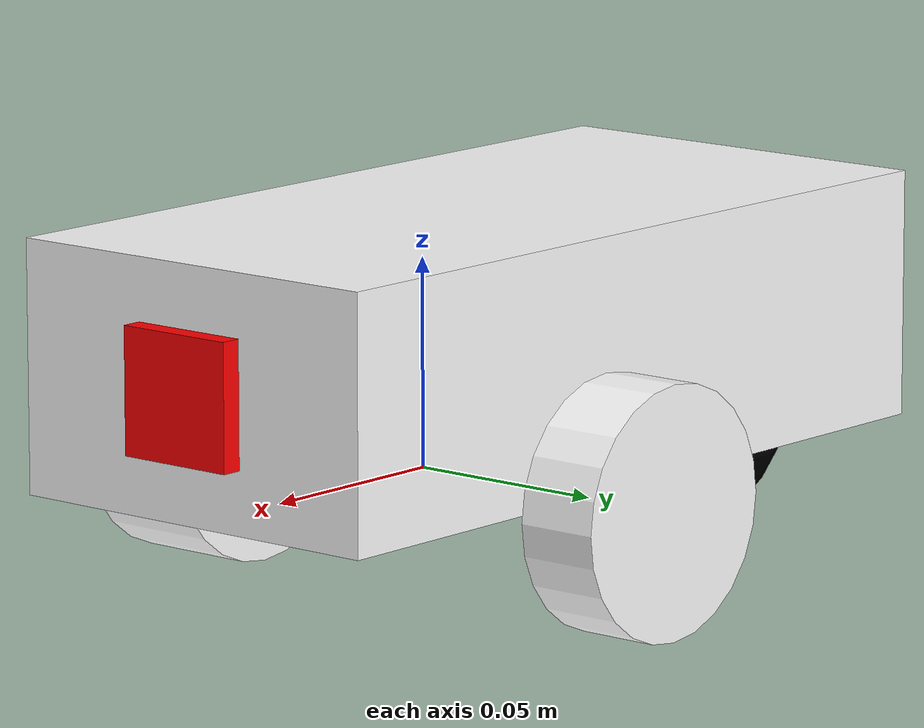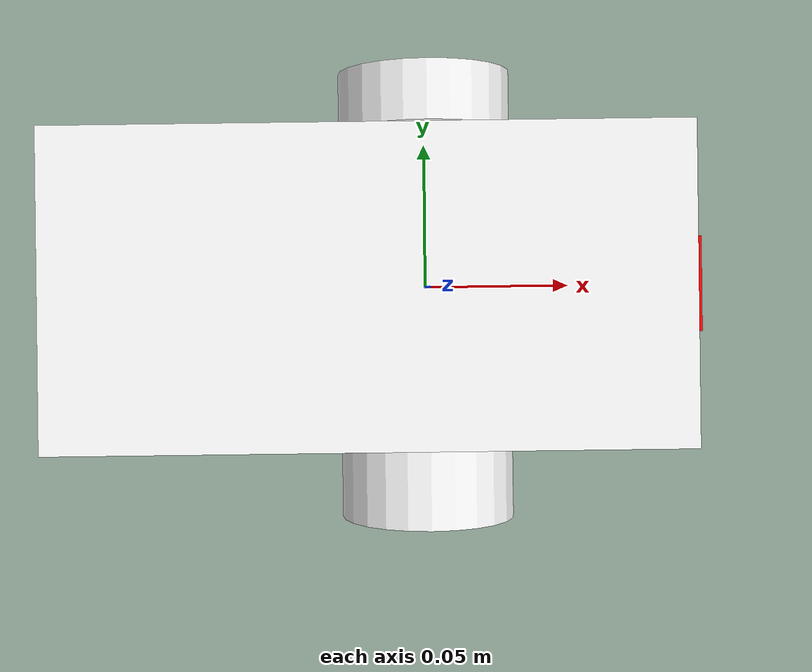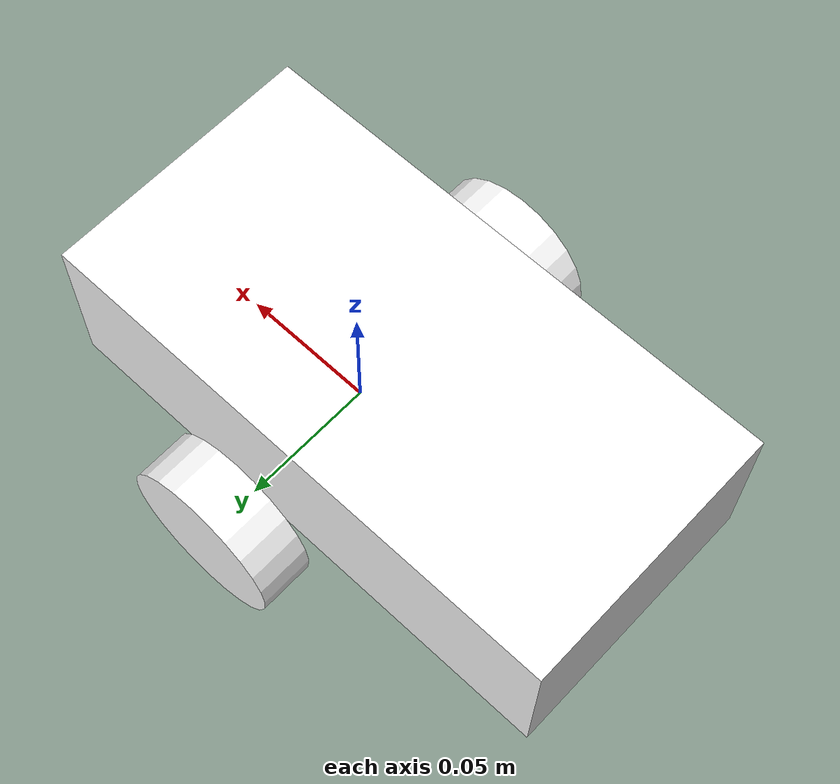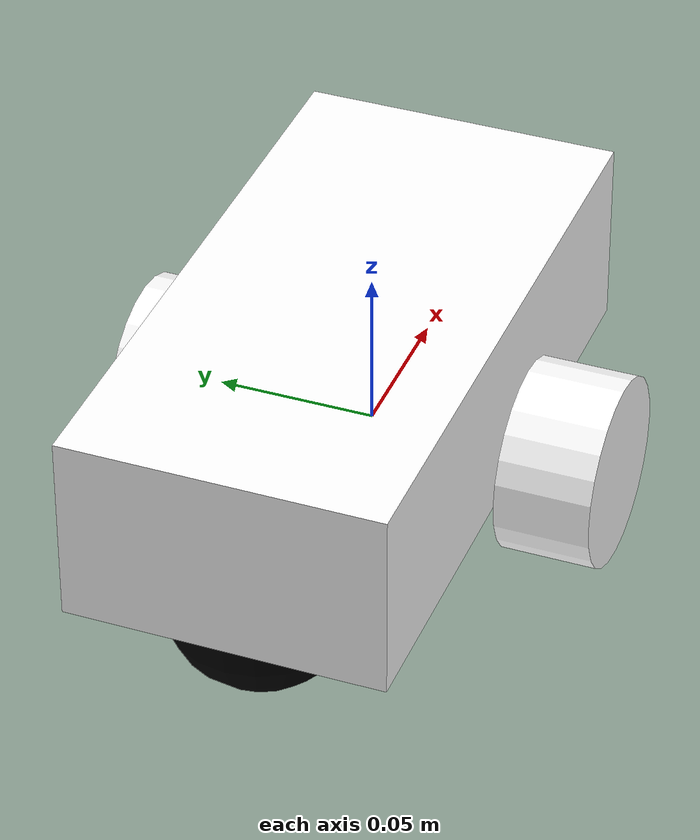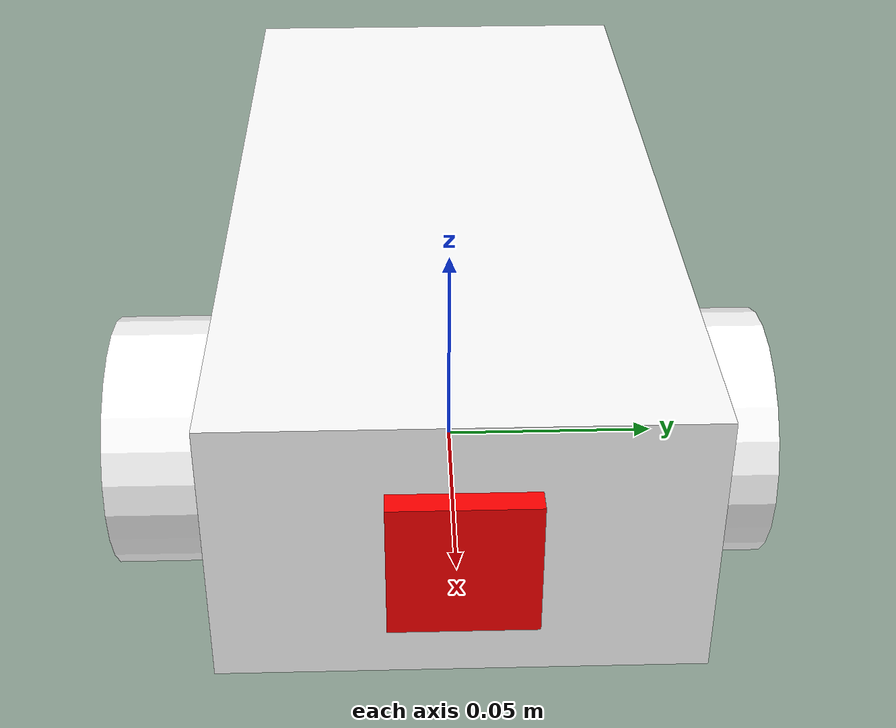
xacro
<?xml version="1.0"?>
<robot xmlns:xacro="http://www.ros.org/wiki/xacro" name="urdf_tutorial">
    <!-- MACROS -->
    <xacro:include filename="macros.xacro"/>
    <xacro:include filename="gazebo.xacro"/>

    <!-- COLOR -->
    <material name="white">
        <color rgba="1 1 1 1" />
    </material>

    <material name="blue">
        <color rgba="0 0 1 1" />
    </material>

    <material name="black">
        <color rgba="0 0 0 1" />
    </material>

    <material name="red">
        <color rgba="1 0 0 1" />
    </material>

    <!-- BASE LINK -->
    <link name="base_link">
        <inertial>
            <mass value="1.0" />
            <inertia ixx="0.1" ixy="0.0" ixz="0.0" iyy="0.1" iyz="0.0" izz="0.1" />
        </inertial>
    </link>

    <!-- BODY LINK -->
    <joint name="body_joint" type="fixed">
        <parent link="base_link" />
        <child link="body" />
        <origin xyz="-0.12 0 0" />
    </joint>

    <link name="body">
        <visual>
            <origin xyz="0.1 0 0.03" />
            <geometry>
                <box size="0.2 0.1 0.06" />
            </geometry>
            <material name="white" />
        </visual>
        <collision>
            <origin xyz="0.1 0 0.03" />
            <geometry>
                <box size="0.2 0.1 0.06" />
            </geometry>
        </collision>
    </link>

    <!-- LEFT WHEEL LINK -->
    <joint name="left_wheel_joint" type="continuous">
        <parent link="base_link" />
        <child link="left_wheel" />
        <origin xyz="0 0.065 0" rpy="0 -${pi/2} -${pi/2}" />  <!-- ✅ 바퀴 세우기 -->
        <axis xyz="0 1 0" />  <!-- ✅ 바퀴가 X축을 따라 회전하도록 수정 -->
    </joint>

    <link name="left_wheel">
        <visual>
            <geometry>
                <cylinder radius="0.03" length="0.02" />
            </geometry>
            <material name="white" />
        </visual>
        <collision>
            <geometry>
                <cylinder radius="0.03" length="0.02" />
            </geometry>
        </collision>
        <inertial>
            <mass value="0.5"/>
            <inertia ixx="0.01" ixy="0.0" ixz="0.0"
                     iyy="0.01" iyz="0.0"
                     izz="0.02"/>
        </inertial>
    </link>

    <!-- RIGHT WHEEL LINK -->
    <joint name="right_wheel_joint" type="continuous">
        <parent link="base_link" />
        <child link="right_wheel" />
        <origin xyz="0 -0.065 0" rpy="0 -${pi/2} -${pi/2}" />
        <axis xyz="0 1 0" />
    </joint>

    <link name="right_wheel">
        <visual>
            <geometry>
                <cylinder radius="0.03" length="0.03" />
            </geometry>
            <material name="white" />
        </visual>
        <collision>
            <geometry>
                <cylinder radius="0.03" length="0.03" />
            </geometry>
        </collision>
        <inertial>
            <mass value="0.5"/>
            <inertia ixx="0.01" ixy="0.0" ixz="0.0"
                     iyy="0.01" iyz="0.0"
                     izz="0.02"/>
        </inertial>
    </link>

    <!-- CASTER WHEEL LINK -->
    <joint name="caster_wheel_joint" type="fixed">
        <parent link="body" />
        <child link="caster_wheel" />
        <origin xyz="0.03 0 0" />
    </joint>

    <link name="caster_wheel">
        <visual>
            <geometry>
                <sphere radius="0.03" />
            </geometry>
            <material name="black" />
        </visual>
        <collision>
            <geometry>
                <sphere radius="0.03" />
            </geometry>
        </collision>
    </link>

    <!-- CAMERA -->
    <joint name="camera_joint" type="fixed">
        <parent link="body" />
        <child link="camera_link" />
        <origin xyz="0.20 0.0 0.03" rpy="0 0 0" />
    </joint>

    <link name="camera_link">
        <visual>
            <geometry>
                <box size="0.01 0.03 0.03" />
            </geometry>
            <material name="red" />
        </visual>
        <collision>
            <geometry>
                <box size="0.01 0.03 0.03" />
            </geometry>
        </collision>
    </link>

</robot>
